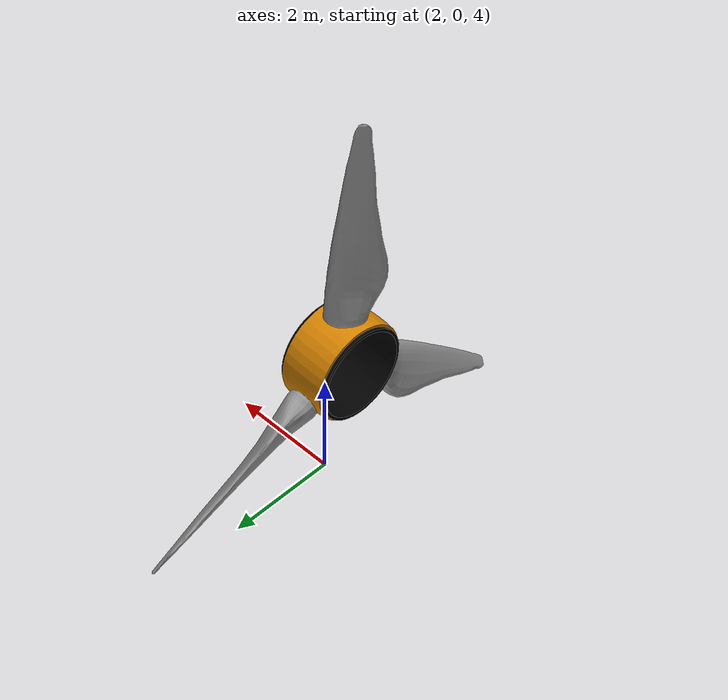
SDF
<?xml version="1.0" ?>
<sdf version="1.8">
  <model name="blades">
    <static>true</static>
    <pose>0 0 1 1.5708 0 0</pose>
    <link name="link">
      <visual name="visual">
        <geometry>
          <mesh>
            <uri>model://Blades/meshes/TidalTurbine_Blades.dae</uri>
          </mesh>
        </geometry>
      </visual>
      <collision name="collision">
        <geometry>
          <mesh>
            <uri>model://Blades/meshes/TidalTurbine_Blades.dae</uri>
          </mesh>
        </geometry>
      </collision>
    </link>
  </model>
</sdf>
